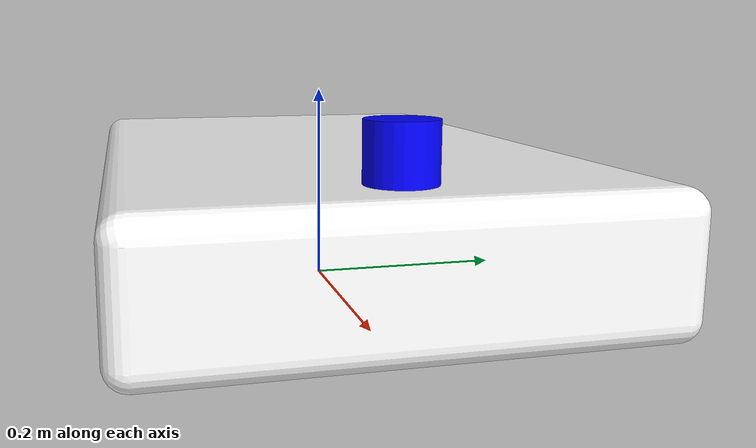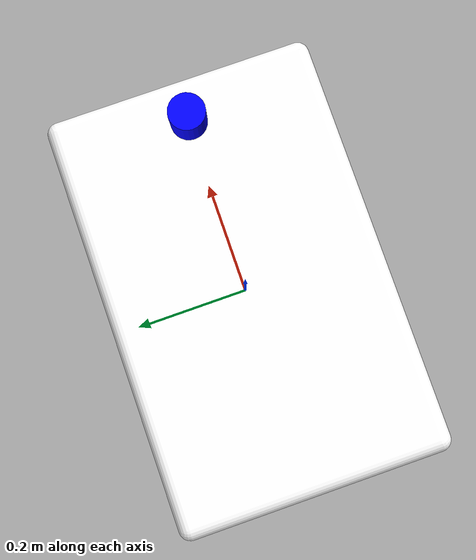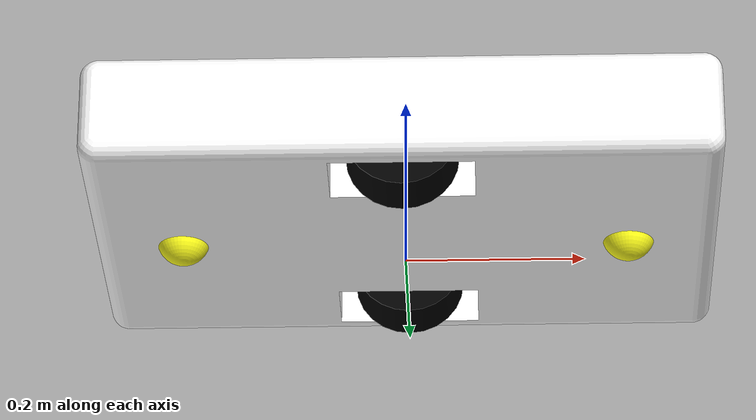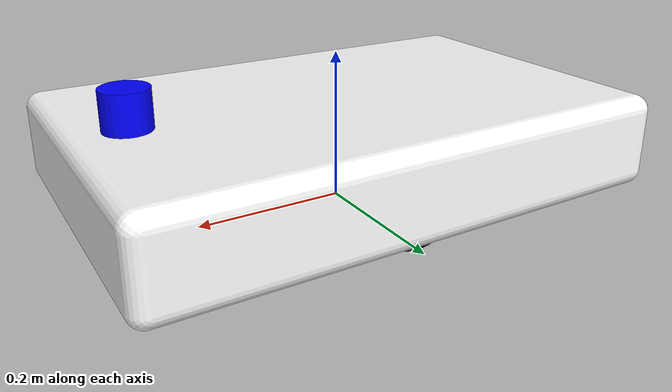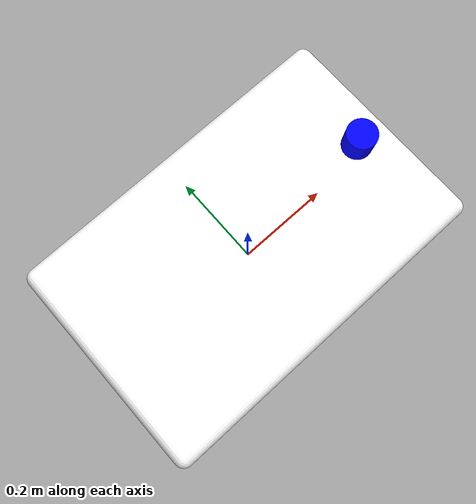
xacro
<?xml version="1.0"?>
<robot name="lino" xmlns:xacro="http://ros.org/wiki/xacro">

<!--    mass and inertia-->
    <xacro:property name="PI_2" value="1.57079632679" />
    <xacro:property name="base_link_m" value="1" />
    <xacro:property name="r_wheel_m" value="0.5" />
    <xacro:property name="l_wheel_m" value="0.5" />
    <xacro:property name="front_castor_m" value="0.1" />
    <xacro:property name="rear_castor_m" value="0.1" />

<!--    dimensions-->
    <xacro:property name="base_link_h" value="0.1235" />
    <xacro:property name="base_link_l" value="0.7" />
    <xacro:property name="base_link_w" value="0.45" />
    <xacro:property name="wheels_from_ground" value="0.02" />
    <xacro:property name="wheels_d" value="0.125" />
    <xacro:property name="wheels_w" value="0.06" />
	<xacro:property name="wheels_center_shift_base_link" value="${(wheels_d/2)-wheels_from_ground }" />
    <xacro:property name="dist_bet_wheels" value="0.1575" />
    <xacro:property name="dist_bet_castors" value="0.25" />
    <xacro:property name="laser_r" value="0.03" />
    <xacro:property name="laser_l" value="0.05" />
    <xacro:property name="laser_x" value="${0.625 - (base_link_l/2)}" />
    <xacro:property name="laser_z" value="${base_link_h+(laser_l/2)}" />

<!--    laser data-->
    <xacro:property name="laser_angular_res" value="${1}" />
    <xacro:property name="laser_angle" value="${(270/180)*(PI_2*2)}" />
    <xacro:property name="laser_min_range" value="${0.1}" />
    <xacro:property name="laser_max_range" value="${10}" />
    <xacro:property name="laser_linear_res" value="${0.001}" />

<!--    materials-->
    <material name="yellow">
       <color rgba="1.0 1.0 0.1 1.0"/>
    </material>
    <material name="white">
       <color rgba="1.0 1.0 1.0 1.0"/>
    </material>
    <material name="black">
       <color rgba="0.0 0.0 0.0 1.0"/>
    </material>
    <material name="blue">
       <color rgba="0.0 0.0 1.0 1.0"/>
    </material>

<!--    transmission block-->
    <xacro:macro name="transmission_block" params="joint_name">
        <transmission name="${joint_name}_trans">
            <type>transmission_interface/SimpleTransmission</type>
            <joint name="${joint_name}">
               <hardwareInterface>hardware_interface/PositionJointInterface</hardwareInterface>
            </joint>
            <actuator name="${joint_name}_motor">
                <mechanicalReduction>1</mechanicalReduction>
                <hardwareInterface>hardware_interface/PositionInterface</hardwareInterface>
            </actuator>
        </transmission>
    </xacro:macro>

<!--    link list-->
    <link name="base_footprint"/>
    <gazebo reference="base_footprint">
        <turnGravityOff>false</turnGravityOff>
    </gazebo>

    <link name="base_link">
        <inertial>
            <mass value="${base_link_m}"/>
            <origin xyz="0 0 0" rpy="0 0 0"/>
            <inertia ixx="0.03" ixy="0" ixz="0" iyy="0.03" iyz="0" izz="0.03"/>
        </inertial>
        <visual>
            <geometry>
                <mesh filename="package://lino_description/meshes/base_link.stl"/>
            </geometry>
            <material name="white"/>
        </visual>
        <collision>
            <geometry>
                <mesh filename="package://lino_description/meshes/base_link.stl"/>
            </geometry>
        </collision>
    </link>
    <gazebo reference="base_link">
        <turnGravityOff>false</turnGravityOff>
        <material>Gazebo/White</material>
    </gazebo>

    <link name="r_wheel">
        <inertial>
            <mass value="${r_wheel_m}"/>
            <origin xyz="0 0 0" rpy="${PI_2} 0 0"/>
            <inertia ixx="0.015" ixy="0" ixz="0" iyy="0.015" iyz="0" izz="0.015"/>
        </inertial>
        <visual>
            <origin xyz="0 0 0" rpy="${PI_2} 0 0"/>
            <geometry>
                <cylinder radius="${wheels_d/2}" length="${wheels_w}"/>
            </geometry>
            <material name="black"/>
        </visual>
        <collision>
            <origin xyz="0 0 0" rpy="${PI_2} 0 0"/>
            <geometry>
                <cylinder radius="${wheels_d/2}" length="${wheels_w}"/>
            </geometry>
        </collision>
    </link>
    <gazebo reference="r_wheel">
        <mu1 value="2.0"/>
        <mu2 value="2.0"/>
        <kp value="10000000.0" />
        <kd value="1.0" />
        <material>Gazebo/Black</material>
    </gazebo>

    <link name="l_wheel">
        <inertial>
            <mass value="${l_wheel_m}"/>
            <origin xyz="0 0 0" rpy="${PI_2} 0 0"/>
            <inertia ixx="0.015" ixy="0" ixz="0" iyy="0.015" iyz="0" izz="0.015"/>
        </inertial>
        <visual>
            <origin xyz="0 0 0" rpy="${PI_2} 0 0"/>
            <geometry>
                <cylinder radius="${wheels_d/2}" length="${wheels_w}"/>
            </geometry>
            <material name="black"/>
        </visual>
        <collision>
            <origin xyz="0 0 0" rpy="${PI_2} 0 0"/>
            <geometry>
                <cylinder radius="${wheels_d/2}" length="${wheels_w}"/>
            </geometry>
        </collision>
    </link>
    <gazebo reference="l_wheel">
        <mu1 value="2.0"/>
        <mu2 value="2.0"/>
        <kp value="10000000.0" />
        <kd value="1.0" />
        <material>Gazebo/Black</material>
    </gazebo>

    <link name="front_castor">
        <inertial>
            <mass value="${front_castor_m}"/>
            <origin xyz="0 0 0" rpy="0 0 0"/>
            <inertia ixx="0.003" ixy="0" ixz="0" iyy="0.003" iyz="0" izz="0.003"/>
        </inertial>
        <visual>
            <geometry>
                <mesh filename="package://lino_description/meshes/castor_wheel.stl"/>
            </geometry>
            <material name="yellow"/>
        </visual>
        <collision>
            <geometry>
                <mesh filename="package://lino_description/meshes/castor_wheel.stl"/>
            </geometry>
        </collision>
    </link>
    <gazebo reference="front_castor">
        <turnGravityOff>false</turnGravityOff>
        <material>Gazebo/Yellow</material>
    </gazebo>

    <link name="rear_castor">
        <inertial>
            <mass value="${rear_castor_m}"/>
            <origin xyz="0 0 0" rpy="0 0 0"/>
            <inertia ixx="0.003" ixy="0" ixz="0" iyy="0.003" iyz="0" izz="0.003"/>
        </inertial>
        <visual>
            <geometry>
                <mesh filename="package://lino_description/meshes/castor_wheel.stl"/>
            </geometry>
            <material name="yellow"/>
        </visual>
        <collision>
            <geometry>
                <mesh filename="package://lino_description/meshes/castor_wheel.stl"/>
            </geometry>
        </collision>
    </link>
    <gazebo reference="rear_castor">
        <turnGravityOff>false</turnGravityOff>
        <material>Gazebo/Yellow</material>
    </gazebo>

    <link name="laser_link">
        <visual>
            <geometry>
                <cylinder radius="${laser_r}" length="${laser_l}"/>
            </geometry>
            <material name="blue"/>
        </visual>
    </link>
    <gazebo reference="laser_link">
        <turnGravityOff>false</turnGravityOff>
        <material>Gazebo/Blue</material>
        <sensor type="ray" name="laser">
            <pose>0 0 0 0 0 0</pose>
            <visualize>true</visualize>
            <update_rate>40</update_rate>
            <ray>
                <scan>
                    <horizontal>
                        <samples>720</samples>
                        <resolution>${laser_angular_res}</resolution>
                        <min_angle>${-laser_angle/2}</min_angle>
                        <max_angle>${laser_angle/2}</max_angle>
                    </horizontal>
                </scan>
                <range>
                    <min>${laser_min_range}</min>
                    <max>${laser_max_range}</max>
                    <resolution>${laser_linear_res}</resolution>
                </range>
            </ray>
            <plugin name="gazebo_ros_head_hokuyo_controller" filename="libgazebo_ros_laser.so">
                <topicName>/scan</topicName>
                <frameName>laser_link</frameName>
            </plugin>
        </sensor>
    </gazebo>

<!--        joint list-->
    <joint name="base_footprint_base_link" type="fixed">
        <origin rpy="0 0 0" xyz="0 0 ${wheels_from_ground}"/>
        <parent link="base_footprint"/>
        <child link="base_link"/>
    </joint>
    <joint name="base_link_front_castor" type="fixed">
        <origin rpy="0 0 0" xyz="${dist_bet_castors} 0 ${-wheels_from_ground}"/>
        <parent link="base_link"/>
        <child link="front_castor"/>
    </joint>

    <joint name="base_link_rear_castor" type="fixed">
        <origin rpy="0 0 0" xyz="${-dist_bet_castors} 0 ${-wheels_from_ground}"/>
        <parent link="base_link"/>
        <child link="rear_castor"/>
    </joint>

    <joint name="base_link_laser" type="fixed">
        <origin rpy="0 0 0" xyz="${laser_x} 0 ${laser_z}"/>
        <parent link="base_link"/>
        <child link="laser_link"/>
    </joint>

    <joint name="r_wheel_joint" type="continuous">
        <origin rpy="0 0 0" xyz="0 ${dist_bet_wheels} ${(wheels_d/2)- (wheels_from_ground)}"/>
        <parent link="base_link"/>
        <child link="r_wheel"/>
        <axis xyz="0 1 0"/>
        <dynamics damping="0.0" friction="0.0"/>
        <limit effort="100" velocity="100"/>
    </joint>

    <joint name="l_wheel_joint" type="continuous">
        <origin rpy="0 0 0" xyz="0 ${-dist_bet_wheels} ${(wheels_d/2)- (wheels_from_ground)}"/>
        <parent link="base_link"/>
        <child link="l_wheel"/>
        <axis xyz="0 1 0"/>
        <dynamics damping="0.0" friction="0.0"/>
        <limit effort="100" velocity="100"/>
    </joint>
  <!-- Gazebo plugin for ROS Control -->
    <gazebo>
  <!-- Differential drive controller  -->
        <plugin name="differential_drive_controller" filename="libgazebo_ros_diff_drive.so">
            <legacyMode>true</legacyMode>
            <rosDebugLevel>Debug</rosDebugLevel>
            <publishWheelTF>true</publishWheelTF>
            <publishOdomTF>true</publishOdomTF>
            <robotNamespace>/</robotNamespace>
            <publishWheelJointState>true</publishWheelJointState>
            <alwaysOn>true</alwaysOn>
            <updateRate>100.0</updateRate>
            <leftJoint>l_wheel_joint</leftJoint>
            <rightJoint>r_wheel_joint</rightJoint>
            <wheelSeparation>${dist_bet_wheels}</wheelSeparation>
            <wheelDiameter>${wheels_d}</wheelDiameter>
            <broadcastTF>1</broadcastTF>
            <wheelTorque>10</wheelTorque>
            <wheelAcceleration>2</wheelAcceleration>
            <commandTopic>cmd_vel</commandTopic>
            <odometryFrame>odom</odometryFrame>
            <odometryTopic>odom</odometryTopic>
            <odometrySource>world</odometrySource>
            <publishTf>1</publishTf>
            <robotBaseFrame>base_footprint</robotBaseFrame>
        </plugin>
    </gazebo>
</robot>
